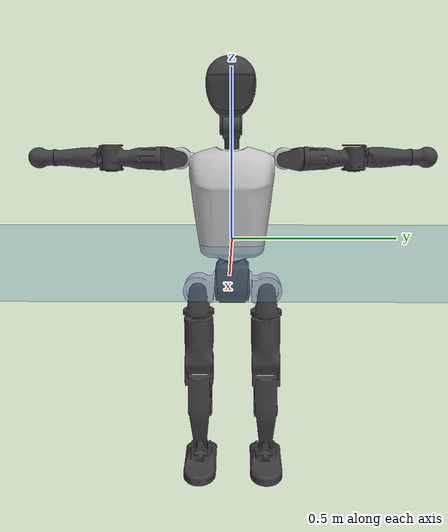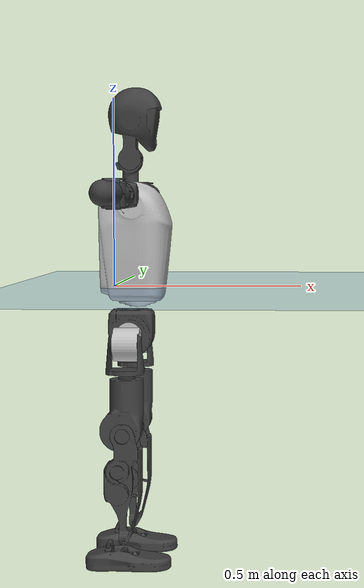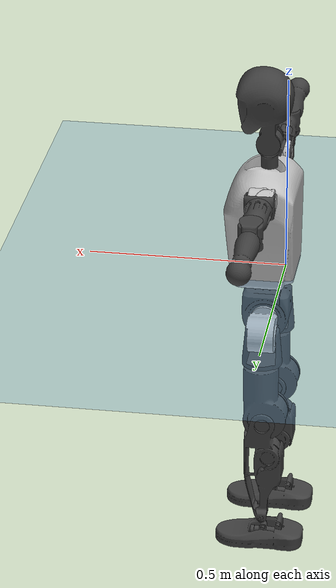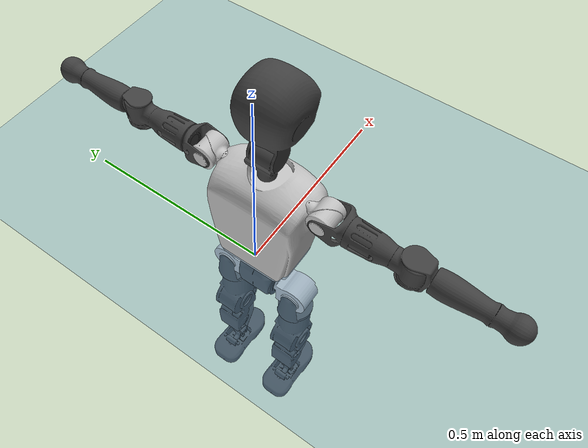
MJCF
<mujoco model="T1">
  <compiler angle="radian" assetdir="assets" balanceinertia="true" inertiafromgeom="false"/>

  <option timestep="0.005" density="1.2" viscosity="2e-05"/>

  <size nkey="1"/>

  <visual>
    <quality shadowsize="8192"/>
    <map shadowclip="0.5"/>
  </visual>

  <default>
    <default class="/">
      <joint armature="0.01" damping="0.01" frictionloss="0.1"/>
      <geom contype="0" conaffinity="0" group="1" solref="-1000 -80"/>
      <site size="0.01 0.005 0.005" group="5"/>
      <general forcelimited="true" biastype="affine" gainprm="25" biasprm="0 -25 -0.6"/>
      <default class="t1">
        <geom rgba="0.25 0.25 0.25 1"/>
        <default class="visual">
          <geom type="mesh" group="2"/>
        </default>
        <default class="collision">
          <geom group="3"/>
        </default>
        <default class="foot">
          <geom size="0.1115 0.05 0.015" type="box" condim="6" group="4" priority="1" solimp="0.015 1 0.015"/>
        </default>
        <default class="reward_collision_sphere">
          <geom group="5" rgba="1 0 0 1"/>
        </default>
      </default>
    </default>
  </default>

  <asset>
    <texture type="skybox" colorspace="auto" name="//unnamed_texture_0" builtin="gradient" rgb1="0.95 0.95 0.95" rgb2="0.95 0.95 0.95" width="100" height="600"/>
    <texture type="2d" colorspace="auto" name="texplane" builtin="checker" rgb1="0.345 0.575 0.748" rgb2="0.345 0.575 0.748" markrgb="1 1 1" width="512" height="512"/>
    <material name="MatPlane" class="/" texture="texplane" texuniform="true" texrepeat="2 2" specular="0.9"/>
    <mesh name="Trunk" class="/" file="Trunk.stl"/>
    <mesh name="H1" class="/" file="H1.stl"/>
    <mesh name="H2" class="/" file="H2.stl"/>
    <mesh name="AL1" class="/" file="AL1.stl"/>
    <mesh name="AL2" class="/" file="AL2.stl"/>
    <mesh name="AL3" class="/" file="AL3.stl"/>
    <mesh name="left_hand_link" class="/" file="left_hand_link.stl"/>
    <mesh name="AR1" class="/" file="AR1.stl"/>
    <mesh name="AR2" class="/" file="AR2.stl"/>
    <mesh name="AR3" class="/" file="AR3.stl"/>
    <mesh name="right_hand_link" class="/" file="right_hand_link.stl"/>
    <mesh name="Waist" class="/" file="Waist.stl"/>
    <mesh name="Hip_Pitch_Left" class="/" file="Hip_Pitch_Left.stl"/>
    <mesh name="Hip_Roll_Left" class="/" file="Hip_Roll_Left.stl"/>
    <mesh name="Hip_Yaw_Left" class="/" file="Hip_Yaw_Left.stl"/>
    <mesh name="Shank_Left" class="/" file="Shank_Left.stl"/>
    <mesh name="Ankle_Cross_Left" class="/" file="Ankle_Cross_Left.stl"/>
    <mesh name="left_foot_link" class="/" file="left_foot_link.stl"/>
    <mesh name="Hip_Pitch_Right" class="/" file="Hip_Pitch_Right.stl"/>
    <mesh name="Hip_Roll_Right" class="/" file="Hip_Roll_Right.stl"/>
    <mesh name="Hip_Yaw_Right" class="/" file="Hip_Yaw_Right.stl"/>
    <mesh name="Shank_Right" class="/" file="Shank_Right.stl"/>
    <mesh name="Ankle_Cross_Right" class="/" file="Ankle_Cross_Right.stl"/>
    <mesh name="right_foot_link" class="/" file="right_foot_link.stl"/>
  </asset>

  <worldbody>
    <geom name="floor" class="/" size="100 100 0.125" type="plane" group="0" material="MatPlane"/>
    <light name="toplight_shadow" class="/" pos="0 0 5" dir="0.0990148 0.0990148 -0.990148" type="directional" ambient="0.04 0.04 0.04" diffuse="0.55 0.55 0.55" specular="0.12 0.12 0.12"/>
    <light name="toplight_fill" class="/" pos="0 0 5" dir="0.0990148 0.0990148 -0.990148" type="directional" castshadow="false" ambient="0.04 0.04 0.04" diffuse="0.3 0.3 0.3" specular="0.08 0.08 0.08"/>
    <body name="trunk" childclass="t1" pos="0.000236351 0.000691446 -0.00238555" quat="0.999999 0.00115328 -0.000350137 0.000371764">
      <inertial pos="0.0395373 -0.000371014 0.117069" quat="0.999951 -0.000450236 -0.00990237 0.000128417" mass="9.08769" diaginertia="0.0177091 0.0611273 0.0915112"/>
      <joint name="//unnamed_joint_0" type="free" armature="0" damping="0" frictionloss="0"/>
      <geom name="//unnamed_geom_1" class="visual" rgba="0.76 0.76 0.76 1" mesh="Trunk"/>
      <geom name="//unnamed_geom_2" class="collision" size="0.0698797 0.0931729 0.139759" pos="0.0434029 0 0.133299" type="box"/>
      <geom name="//unnamed_geom_3" class="reward_collision_sphere" size="0.107149" pos="0.0434029 0 0.111082"/>
      <geom name="//unnamed_geom_4" class="reward_collision_sphere" size="0.0139759" pos="0.0434029 0.0816837 0"/>
      <geom name="//unnamed_geom_5" class="reward_collision_sphere" size="0.0139759" pos="0.0434029 -0.0816837 0"/>
      <geom name="//unnamed_geom_6" class="reward_collision_sphere" size="0.0139759" pos="0.0434029 0.102825 0.199948"/>
      <geom name="//unnamed_geom_7" class="reward_collision_sphere" size="0.0139759" pos="0.0434029 -0.102825 0.199948"/>
      <site name="imu" pos="-0.011731 -0.00154451 0.00144626" size="0.00931729"/>
      <camera name="track" pos="0 -1.92197 0" quat="0.707107 0.707107 0 0" mode="trackcom"/>
      <camera name="ego_camera" pos="0.0882525 0 0.466545" quat="-0.5 -0.5 0.5 0.5"/>
      <body name="H1" pos="0.0450646 -0.00034913 0.270627" quat="0.999999 -0.000562364 3.38071e-05 0.00103504">
        <inertial pos="0.000271719 -0.00197705 0.0627539" quat="0.765363 -0.0145994 0.00230202 0.643429" mass="0.359206" diaginertia="4.7477e-05 0.000186434 0.00024859"/>
        <joint name="AAHead_yaw" pos="0 0 0" axis="-0.0026598 0.00105772 0.999996" range="-1.62226 1.59177" armature="0.00950915" damping="0.00962944" frictionloss="0.0893284"/>
        <geom name="//unnamed_geom_8" class="visual" mesh="H1"/>
        <body name="H2" pos="0.000795719 -0.00118097 0.0696792" quat="0.999999 0.000854873 -0.000620911 -0.000704457">
          <inertial pos="0.00522809 0.000561167 0.109877" quat="0.988464 0.105979 -0.0746741 -0.078301" mass="0.492453" diaginertia="0.00039601 0.00154359 0.00290671"/>
          <joint name="Head_pitch" pos="0 0 0" axis="-1.92056e-05 -0.999928 0.0119946" range="-1.2479 0.397893" armature="0.0102842" damping="0.0180898" frictionloss="0.104668"/>
          <geom name="//unnamed_geom_9" class="visual" mesh="H2"/>
          <geom name="//unnamed_geom_10" class="collision" size="0.0745383" pos="0.00723381 0 0.12219"/>
          <geom name="//unnamed_geom_11" class="reward_collision_sphere" size="0.0838556" pos="0.0144676 0 0.111082"/>
        </body>
      </body>
      <body name="AL1" pos="0.0449762 0.10362 0.244206" quat="1 4.50657e-05 0.000449598 0.000129073">
        <inertial pos="-0.00314443 0.0435945 0.00022291" quat="0.502938 0.493784 -0.501839 0.501386" mass="0.426482" diaginertia="0.000265931 0.00108853 0.000490341"/>
        <joint name="Left_Shoulder_Pitch" pos="0 0 0" axis="8.47226e-05 1 -0.000173643" stiffness="0.0010175" range="-3.30211 1.22281" armature="0.00963903" damping="0.00854976" frictionloss="0.0964708"/>
        <geom name="//unnamed_geom_12" class="visual" rgba="0.76 0.76 0.76 1" mesh="AL1"/>
        <body name="AL2" pos="0.00100295 0.0455884 -0.00236545" quat="0.999999 -0.000219331 0.00100683 0.000393737">
          <inertial pos="0.00365301 0.0361714 -0.00228556" quat="0.486202 0.511033 -0.488043 0.514069" mass="0.131615" diaginertia="8.0275e-05 0.000280475 0.000294338"/>
          <joint name="Left_Shoulder_Roll" pos="0 0 0" axis="-0.999929 -0.00930926 -0.0074146" range="-1.57739 1.75858" armature="0.00918132" damping="0.00545119" frictionloss="0.0821109"/>
          <geom name="//unnamed_geom_13" class="visual" mesh="AL2"/>
          <body name="AL3" pos="-0.00170199 0.0581352 0.00130351" quat="1 -5.84838e-05 -9.39435e-06 -4.30294e-05">
            <inertial pos="0.000516448 0.081985 0.00185458" quat="0.706331 0.707882 -8.44132e-05 -4.06503e-06" mass="0.817296" diaginertia="0.00252691 0.0103989 0.00104845"/>
            <joint name="Left_Elbow_Pitch" pos="0 0 0" axis="0.00229875 -0.999942 -0.0105009" range="-2.28428 2.26333" armature="0.00967168" damping="0.0102184" frictionloss="0.0900559"/>
            <geom name="//unnamed_geom_14" class="visual" mesh="AL3"/>
            <geom name="//unnamed_geom_15" class="collision" size="0.0279519 0.0698797" pos="0 0.0480492 0" quat="0.707105 0.707108 0 0" type="cylinder"/>
            <geom name="//unnamed_geom_16" class="reward_collision_sphere" size="0.0335422"/>
            <body name="left_hand_link" pos="-0.000331469 0.139392 0.00313214" quat="1 9.79607e-07 -0.000325494 0.000333462">
              <inertial pos="-0.000192896 0.104966 0.00168728" quat="0.708149 0.70606 0.00179369 -0.00088218" mass="0.275071" diaginertia="0.00161543 0.00694654 0.000374619"/>
              <joint name="Left_Elbow_Yaw" pos="0 0 0" axis="-0.000937872 -0.0136502 0.999906" range="-2.46425 0.0113074" armature="0.0089917" damping="0.0140368" frictionloss="0.0959561"/>
              <geom name="//unnamed_geom_17" class="visual" mesh="left_hand_link"/>
              <geom name="//unnamed_geom_18" class="collision" size="0.0279519 0.0815263" pos="0 0.124928 0" quat="0.707105 0.707108 0 0" type="cylinder"/>
              <geom name="//unnamed_geom_19" class="reward_collision_sphere" size="0.0465865"/>
              <geom name="//unnamed_geom_20" class="reward_collision_sphere" size="0.0326105" pos="0 0.105708 0"/>
              <geom name="//unnamed_geom_21" class="reward_collision_sphere" size="0.0326105" pos="0 0.206612 0"/>
            </body>
          </body>
        </body>
      </body>
      <body name="AR1" pos="0.0427079 -0.101696 0.245261" quat="1 -0.000269241 -0.000119863 0.00086591">
        <inertial pos="-0.00164523 -0.043063 -0.00102155" quat="0.503595 0.495229 -0.503869 0.497248" mass="0.431399" diaginertia="0.000268072 0.00106773 0.000502036"/>
        <joint name="Right_Shoulder_Pitch" pos="0 0 0" axis="-0.00162884 -0.999991 -0.00403733" range="-1.22769 3.32305" armature="0.00950855" damping="0" frictionloss="0.0941761"/>
        <geom name="//unnamed_geom_22" class="visual" rgba="0.76 0.76 0.76 1" mesh="AR1"/>
        <body name="AR2" pos="-4.1384e-05 -0.0453209 -0.00115451" quat="1 -0.000118222 0.000246578 0.000301887">
          <inertial pos="0.003494 -0.036218 0.00144975" quat="0.512249 0.488407 -0.511728 0.487026" mass="0.126366" diaginertia="8.2083e-05 0.000284562 0.000291589"/>
          <joint name="Right_Shoulder_Roll" pos="0 0 0" axis="-0.999993 -0.00276733 -0.00231817" range="-1.76048 1.56405" armature="0.00947533" damping="0.00432293" frictionloss="0.102631"/>
          <geom name="//unnamed_geom_23" class="visual" mesh="AR2"/>
          <body name="AR3" pos="-0.00155066 -0.0563713 0.000515049" quat="1 0.000416675 0.000123552 -5.87948e-05">
            <inertial pos="-0.00285169 -0.0818484 -0.000904398" quat="0.705823 0.708372 -0.00469998 0.000393571" mass="0.848043" diaginertia="0.0025305 0.0102592 0.00104689"/>
            <joint name="Right_Elbow_Pitch" pos="0 0 0" axis="0.000306887 1 -0.00067241" range="-2.27823 2.27097" armature="0.00854706" damping="0.00855455" frictionloss="0.0917699"/>
            <geom name="//unnamed_geom_24" class="visual" mesh="AR3"/>
            <geom name="//unnamed_geom_25" class="collision" size="0.0279519 0.0698797" pos="0 -0.0480492 0" quat="0.707105 0.707108 0 0" type="cylinder"/>
            <geom name="//unnamed_geom_26" class="reward_collision_sphere" size="0.0335422"/>
            <body name="right_hand_link" pos="-0.000590103 -0.141235 0.00219027" quat="1 -1.16319e-05 5.05832e-06 9.15742e-05">
              <inertial pos="-0.000994115 -0.103772 0.00194338" quat="0.703077 0.711108 0.00236628 -0.0011465" mass="0.2658" diaginertia="0.00160582 0.00676059 0.000363553"/>
              <joint name="Right_Elbow_Yaw" pos="0 0 0" axis="-0.000552056 0.00679067 0.999977" range="-0.00913131 2.4353" armature="0.00968865" damping="0.0106477" frictionloss="0.0957303"/>
              <geom name="//unnamed_geom_27" class="visual" mesh="right_hand_link"/>
              <geom name="//unnamed_geom_28" class="collision" size="0.0279519 0.0815263" pos="0 -0.124928 0" quat="0.707105 0.707108 0 0" type="cylinder"/>
              <geom name="//unnamed_geom_29" class="reward_collision_sphere" size="0.0465865"/>
              <geom name="//unnamed_geom_30" class="reward_collision_sphere" size="0.0326105" pos="0 -0.105708 0"/>
              <geom name="//unnamed_geom_31" class="reward_collision_sphere" size="0.0326105" pos="0 -0.206612 0"/>
            </body>
          </body>
        </body>
      </body>
      <body name="Waist" pos="0.0462518 0.000277664 -0.127524" quat="1 7.61953e-06 5.6204e-06 -5.71839e-07">
        <inertial pos="0.00197569 -0.000189301 0.00750751" quat="0.983736 0.000618992 -0.179594 0.00312989" mass="2.06576" diaginertia="0.00104689 0.00442327 0.0079107"/>
        <joint name="Waist" pos="0 0 0" axis="0.00252892 -0.00556068 0.999981" range="-1.59462 1.5682" armature="0.00913977" damping="0" frictionloss="0.0932797"/>
        <geom name="//unnamed_geom_32" class="visual" mesh="Waist"/>
        <body name="Hip_Pitch_Left" pos="0.000212692 0.104201 0.00203763" quat="1 -4.55116e-05 -0.000110172 7.53784e-05">
          <inertial pos="0.000272907 -0.00726017 -0.0227927" quat="0.975979 0.217244 0.0159131 0.00419947" mass="0.850447" diaginertia="0.000360695 0.00120597 0.00210947"/>
          <joint name="Left_Hip_Pitch" pos="0 0 0" axis="-0.00142711 0.999999 -0.000818452" range="-1.76509 1.57342" armature="0.00937732" damping="0.00163213" frictionloss="0.0844972"/>
          <geom name="//unnamed_geom_33" class="visual" rgba="0.76 0.76 0.76 1" mesh="Hip_Pitch_Left"/>
          <body name="Hip_Roll_Left" pos="0.000477871 -0.00132541 -0.0221005" quat="1 -0.000211657 6.46682e-05 -8.44149e-05">
            <inertial pos="0.000114136 0.000633334 -0.0596373" quat="0.707535 -0.00726464 -0.00813597 0.706594" mass="0.314291" diaginertia="0.000353327 0.00126617 0.000885662"/>
            <joint name="Left_Hip_Roll" pos="0 0 0" axis="-0.99998 -0.00628944 0.000564892" range="-1.54539 0.200684" armature="0.00936538" damping="0.014633" frictionloss="0.0880205"/>
            <geom name="//unnamed_geom_34" class="visual" mesh="Hip_Roll_Left"/>
            <geom name="//unnamed_geom_35" class="reward_collision_sphere" size="0.0512451"/>
            <body name="Hip_Yaw_Left" pos="-0.000169315 -0.00103111 -0.0889614" quat="1 -4.97202e-05 8.96173e-05 2.8389e-05">
              <inertial pos="-0.00600405 -4.87119e-05 -0.101591" quat="0.694195 -0.0368131 -0.0299671 0.71822" mass="1.73118" diaginertia="0.00525827 0.0204597 0.00436352"/>
              <joint name="Left_Hip_Yaw" pos="0 0 0" axis="0.00322775 -0.00283345 -0.999991" range="-1.00187 1.03405" armature="0.00875499" damping="0.00659931" frictionloss="0.083424"/>
              <geom name="//unnamed_geom_36" class="visual" mesh="Hip_Yaw_Left"/>
              <geom name="//unnamed_geom_37" class="collision" size="0.0465865 0.0745383" type="cylinder"/>
              <body name="Shank_Left" pos="-0.00938706 0.00216628 -0.147625" quat="0.999999 0.000583165 -0.000935368 0.000609472">
                <inertial pos="-0.00452638 -0.00212213 -0.137238" quat="0.997654 -0.00141332 -0.0138704 0.0670267" mass="1.39653" diaginertia="0.00699483 0.0280249 0.00315295"/>
                <joint name="Left_Knee_Pitch" pos="0 0 0" axis="0.00499566 0.999987 -0.000759259" range="0.0191635 2.33827" armature="0.00986822" damping="0.0154118" frictionloss="0.0828553"/>
                <geom name="//unnamed_geom_38" class="visual" mesh="Shank_Left"/>
                <geom name="//unnamed_geom_39" class="collision" size="0.0465865 0.0698797" pos="0 0 -0.133299" type="cylinder"/>
                <geom name="//unnamed_geom_40" class="reward_collision_sphere" size="0.0605624"/>
                <body name="Ankle_Cross_Left" pos="-0.00271589 0.000593942 -0.311785" quat="1 0.000150655 1.57805e-05 0.00022195">
                  <inertial pos="-0.00230742 -0.000299963 -0.00836396" quat="0.447874 0.547589 0.543949 0.451304" mass="0.0575376" diaginertia="5.74378e-06 2.07052e-05 1.88886e-05"/>
                  <joint name="Left_Ankle_Pitch" pos="0 0 0" axis="0.000280707 1 0.000936532" range="-0.878346 0.308139" armature="0.00920301" damping="0.00834232" frictionloss="0.0939412"/>
                  <geom name="//unnamed_geom_41" class="visual" mesh="Ankle_Cross_Left"/>
                  <body name="left_foot_link" pos="0.000821481 0.000358021 -0.0137805" quat="1 0.000186541 -0.000103391 -1.0574e-05">
                    <inertial pos="-0.000111633 0.0003483 -0.00753653" quat="-0.000408871 0.620919 -0.000269734 0.783875" mass="0.556097" diaginertia="0.000532554 0.00196471 0.00374218"/>
                    <joint name="Left_Ankle_Roll" pos="0 0 0" axis="-0.99999 -0.00235809 0.00379998" range="-0.462971 0.429374" armature="0.00940089" damping="0.0216325" frictionloss="0.0936885"/>
                    <geom name="//unnamed_geom_42" class="visual" mesh="left_foot_link"/>
                    <geom name="left_foot" class="foot" size="0.11024 0.0514177 0.0142193" pos="0.00723381 0 -0.0166623"/>
                    <geom name="//unnamed_geom_44" class="reward_collision_sphere" size="0.0484499" pos="0.00723381 0 -0.0166623"/>
                    <geom name="//unnamed_geom_45" class="reward_collision_sphere" size="0.0279519" pos="0.0687212 -0.0221027 -0.0166623"/>
                    <geom name="//unnamed_geom_46" class="reward_collision_sphere" size="0.0279519" pos="-0.0506367 -0.0221027 -0.0166623"/>
                    <site name="left_foot" class="foot" pos="0.00723381 0 -0.0166623" size="0.00931729"/>
                  </body>
                </body>
              </body>
            </body>
          </body>
        </body>
        <body name="Hip_Pitch_Right" pos="-0.00250243 -0.103038 0.00176154" quat="1 0.000838433 -4.35813e-05 -0.000273181">
          <inertial pos="0.000995219 0.0048077 -0.0209377" quat="0.97324 -0.229195 0.0164584 -0.00149006" mass="0.814757" diaginertia="0.000353535 0.00118361 0.00208316"/>
          <joint name="Right_Hip_Pitch" pos="0 0 0" axis="-0.000360149 -0.999999 -0.00134682" range="-1.55985 1.7582" armature="0.0092784" damping="0.00925417" frictionloss="0.104627"/>
          <geom name="//unnamed_geom_47" class="visual" rgba="0.76 0.76 0.76 1" mesh="Hip_Pitch_Right"/>
          <body name="Hip_Roll_Right" pos="-0.00269845 -0.000562347 -0.0207319" quat="1 0.000138022 -4.96953e-06 -0.000350938">
            <inertial pos="0.00191295 6.79209e-05 -0.0599359" quat="0.706963 -0.00580641 -0.00592399 0.707202" mass="0.311498" diaginertia="0.000334438 0.00123064 0.000860272"/>
            <joint name="Right_Hip_Roll" pos="0 0 0" axis="-0.999988 -0.00462203 0.00133128" stiffness="0.000808498" range="-0.186153 1.58599" armature="0.00937582" damping="0.0116934" frictionloss="0.101283"/>
            <geom name="//unnamed_geom_48" class="visual" mesh="Hip_Roll_Right"/>
            <geom name="//unnamed_geom_49" class="reward_collision_sphere" size="0.0512451"/>
            <body name="Hip_Yaw_Right" pos="0.00159299 0.000174718 -0.089543" quat="1 -8.16813e-05 0.000404493 -4.03703e-05">
              <inertial pos="-0.00652495 0.00217193 -0.0997972" quat="0.714264 -0.0321145 -0.031906 0.698411" mass="1.71953" diaginertia="0.00507389 0.0198478 0.0042916"/>
              <joint name="Right_Hip_Yaw" pos="0 0 0" axis="0.000293766 -0.000569323 -1" stiffness="0.00436506" range="-1.01293 1.00607" armature="0.00917894" damping="0.016168" frictionloss="0.0927811"/>
              <geom name="//unnamed_geom_50" class="visual" mesh="Hip_Yaw_Right"/>
              <geom name="//unnamed_geom_51" class="collision" size="0.0465865 0.0745383" type="cylinder"/>
              <body name="Shank_Right" pos="-0.00856722 -0.00107728 -0.146727" quat="1 -6.16416e-05 6.31555e-05 0.000138399">
                <inertial pos="-0.00705213 -0.00140357 -0.1372" quat="0.999451 -0.00935269 -0.0231925 -0.0217352" mass="1.41928" diaginertia="0.00681903 0.0282169 0.00324469"/>
                <joint name="Right_Knee_Pitch" pos="0 0 0" axis="0.000468304 -0.999999 0.0015383" range="-2.34852 -0.0464801" armature="0.00926954" damping="0.00617295" frictionloss="0.0885697"/>
                <geom name="//unnamed_geom_52" class="visual" mesh="Shank_Right"/>
                <geom name="//unnamed_geom_53" class="collision" size="0.0465865 0.0698797" pos="0 0 -0.133299" type="cylinder"/>
                <geom name="//unnamed_geom_54" class="reward_collision_sphere" size="0.0605624"/>
                <body name="Ankle_Cross_Right" pos="0.000357573 -0.000296997 -0.313361" quat="1 -0.000413032 -0.000238734 0.000250856">
                  <inertial pos="-0.00336824 0.000358513 -0.0094754" quat="0.443354 0.551243 0.550747 0.442998" mass="0.0596447" diaginertia="5.79427e-06 2.13195e-05 1.94403e-05"/>
                  <joint name="Right_Ankle_Pitch" pos="0 0 0" axis="0.00277455 -0.999996 -0.00106329" range="-0.299159 0.880415" armature="0.00959865" damping="0.00281633" frictionloss="0.0924285"/>
                  <geom name="//unnamed_geom_55" class="visual" mesh="Ankle_Cross_Right"/>
                  <body name="right_foot_link" pos="0.00166142 0.000141908 -0.0130963" quat="1 -9.20488e-05 9.53048e-05 8.14488e-05">
                    <inertial pos="0.000243712 0.00075632 -0.00760857" quat="-0.000995332 0.620766 0.00116551 0.783995" mass="0.558013" diaginertia="0.000536576 0.00194026 0.00375033"/>
                    <joint name="Right_Ankle_Roll" pos="0 0 0" axis="-0.999999 -0.000737777 0.000865378" range="-0.417729 0.446467" armature="0.00920887" damping="0.0116219" frictionloss="0.105135"/>
                    <geom name="//unnamed_geom_56" class="visual" mesh="right_foot_link"/>
                    <geom name="right_foot" class="foot" size="0.103628 0.0411957 0.0154709" pos="0.00723381 0 -0.0166623"/>
                    <geom name="//unnamed_geom_58" class="reward_collision_sphere" size="0.0372692"/>
                    <geom name="//unnamed_geom_59" class="reward_collision_sphere" size="0.0279519" pos="0.00723381 0 -0.0166623"/>
                    <geom name="//unnamed_geom_60" class="reward_collision_sphere" size="0.0279519" pos="0.0687212 0.0221027 -0.0166623"/>
                    <geom name="//unnamed_geom_61" class="reward_collision_sphere" size="0.0279519" pos="-0.0506367 0.0221027 -0.0166623"/>
                    <site name="right_foot" class="foot" pos="0.00723381 0 -0.0166623" size="0.00931729"/>
                  </body>
                </body>
              </body>
            </body>
          </body>
        </body>
      </body>
    </body>
  </worldbody>

  <contact>
    <pair class="/" geom1="floor" geom2="left_foot" name="//unnamed_contact_0"/>
    <pair class="/" geom1="floor" geom2="right_foot" name="//unnamed_contact_1"/>
  </contact>

  <actuator>
    <general name="AAHead_yaw" class="/" joint="AAHead_yaw" forcerange="-6.51013 6.51013" gainprm="24.1221" biasprm="0 -24.1221 -0.54411"/>
    <general name="Head_pitch" class="/" joint="Head_pitch" forcerange="-6.40944 6.40944" gainprm="24.1221" biasprm="0 -24.1221 -0.54411"/>
    <general name="Left_Shoulder_Pitch" class="/" joint="Left_Shoulder_Pitch" forcerange="-17.0381 17.0381" gainprm="24.1221" biasprm="0 -24.1221 -0.54411"/>
    <general name="Left_Shoulder_Roll" class="/" joint="Left_Shoulder_Roll" forcerange="-16.0785 16.0785" gainprm="24.1221" biasprm="0 -24.1221 -0.54411"/>
    <general name="Left_Elbow_Pitch" class="/" joint="Left_Elbow_Pitch" forcerange="-15.6354 15.6354" gainprm="24.1221" biasprm="0 -24.1221 -0.54411"/>
    <general name="Left_Elbow_Yaw" class="/" joint="Left_Elbow_Yaw" forcerange="-16.8828 16.8828" gainprm="24.1221" biasprm="0 -24.1221 -0.54411"/>
    <general name="Right_Shoulder_Pitch" class="/" joint="Right_Shoulder_Pitch" forcerange="-16.3069 16.3069" gainprm="24.1221" biasprm="0 -24.1221 -0.54411"/>
    <general name="Right_Shoulder_Roll" class="/" joint="Right_Shoulder_Roll" forcerange="-17.0258 17.0258" gainprm="24.1221" biasprm="0 -24.1221 -0.54411"/>
    <general name="Right_Elbow_Pitch" class="/" joint="Right_Elbow_Pitch" forcerange="-16.7013 16.7013" gainprm="24.1221" biasprm="0 -24.1221 -0.54411"/>
    <general name="Right_Elbow_Yaw" class="/" joint="Right_Elbow_Yaw" forcerange="-17.107 17.107" gainprm="24.1221" biasprm="0 -24.1221 -0.54411"/>
    <general name="Waist" class="/" joint="Waist" forcerange="-28.0066 28.0066" gainprm="24.1221" biasprm="0 -24.1221 -0.54411"/>
    <general name="Left_Hip_Pitch" class="/" joint="Left_Hip_Pitch" forcerange="-42.0118 42.0118" gainprm="24.1221" biasprm="0 -24.1221 -0.54411"/>
    <general name="Left_Hip_Roll" class="/" joint="Left_Hip_Roll" forcerange="-30.5367 30.5367" gainprm="24.1221" biasprm="0 -24.1221 -0.54411"/>
    <general name="Left_Hip_Yaw" class="/" joint="Left_Hip_Yaw" forcerange="-27.4471 27.4471" gainprm="24.1221" biasprm="0 -24.1221 -0.54411"/>
    <general name="Left_Knee_Pitch" class="/" joint="Left_Knee_Pitch" forcerange="-60.388 60.388" gainprm="24.1221" biasprm="0 -24.1221 -0.54411"/>
    <general name="Left_Ankle_Pitch" class="/" joint="Left_Ankle_Pitch" forcerange="-18.3635 18.3635" gainprm="24.1221" biasprm="0 -24.1221 -0.54411"/>
    <general name="Left_Ankle_Roll" class="/" joint="Left_Ankle_Roll" forcerange="-13.9457 13.9457" gainprm="24.1221" biasprm="0 -24.1221 -0.54411"/>
    <general name="Right_Hip_Pitch" class="/" joint="Right_Hip_Pitch" forcerange="-38.7056 38.7056" gainprm="24.1221" biasprm="0 -24.1221 -0.54411"/>
    <general name="Right_Hip_Roll" class="/" joint="Right_Hip_Roll" forcerange="-27.8395 27.8395" gainprm="24.1221" biasprm="0 -24.1221 -0.54411"/>
    <general name="Right_Hip_Yaw" class="/" joint="Right_Hip_Yaw" forcerange="-28.7084 28.7084" gainprm="24.1221" biasprm="0 -24.1221 -0.54411"/>
    <general name="Right_Knee_Pitch" class="/" joint="Right_Knee_Pitch" forcerange="-54.8442 54.8442" gainprm="24.1221" biasprm="0 -24.1221 -0.54411"/>
    <general name="Right_Ankle_Pitch" class="/" joint="Right_Ankle_Pitch" forcerange="-18.6415 18.6415" gainprm="24.1221" biasprm="0 -24.1221 -0.54411"/>
    <general name="Right_Ankle_Roll" class="/" joint="Right_Ankle_Roll" forcerange="-13.686 13.686" gainprm="24.1221" biasprm="0 -24.1221 -0.54411"/>
  </actuator>

  <sensor>
    <gyro site="imu" name="imu_angular_velocity"/>
    <velocimeter site="imu" name="imu_linear_velocity"/>
    <framelinvel objtype="site" objname="left_foot" name="left_foot_global_linear_velocity"/>
    <framelinvel objtype="site" objname="right_foot" name="right_foot_global_linear_velocity"/>
  </sensor>

  <keyframe>
    <key name="home" qpos="0 0 0.6385 1 0 0 0 0 0 0 1.4 0 -0.4 0 -1.4 0 0.4 0 -0.4 0 0 0.8 -0.4 0 0.4 0 0 -0.8 0.4 0"/>
  </keyframe>
</mujoco>
